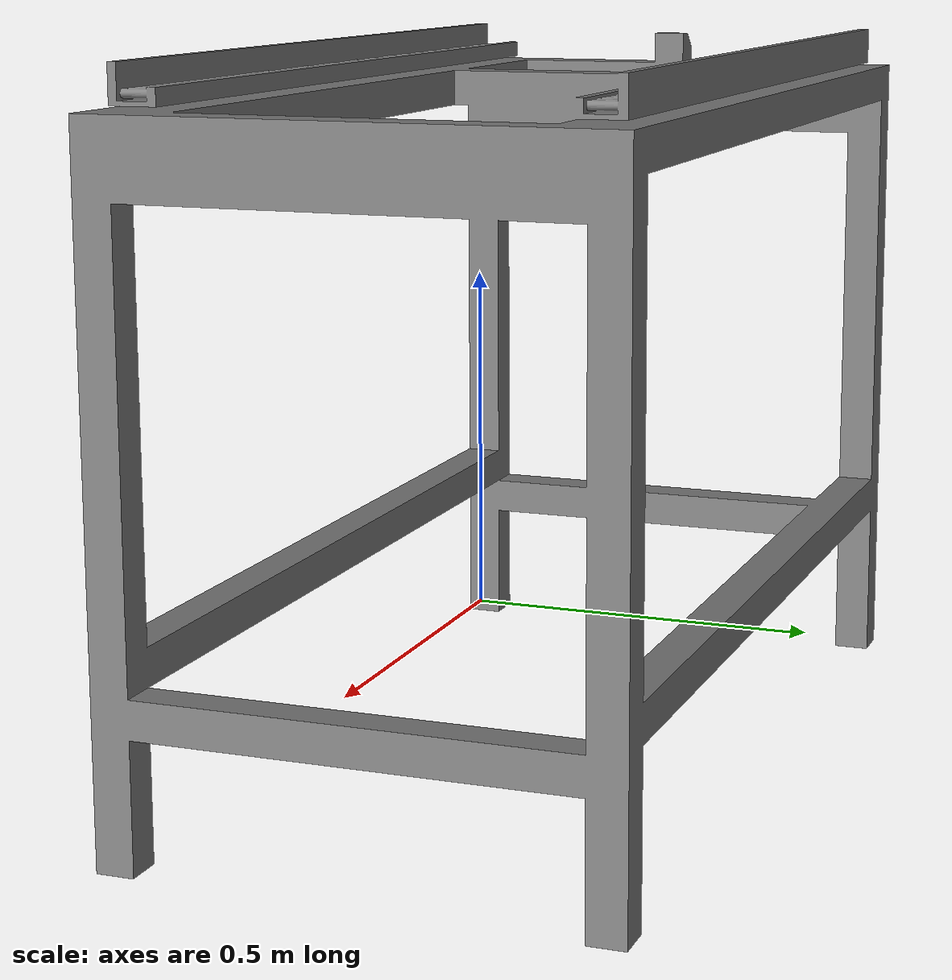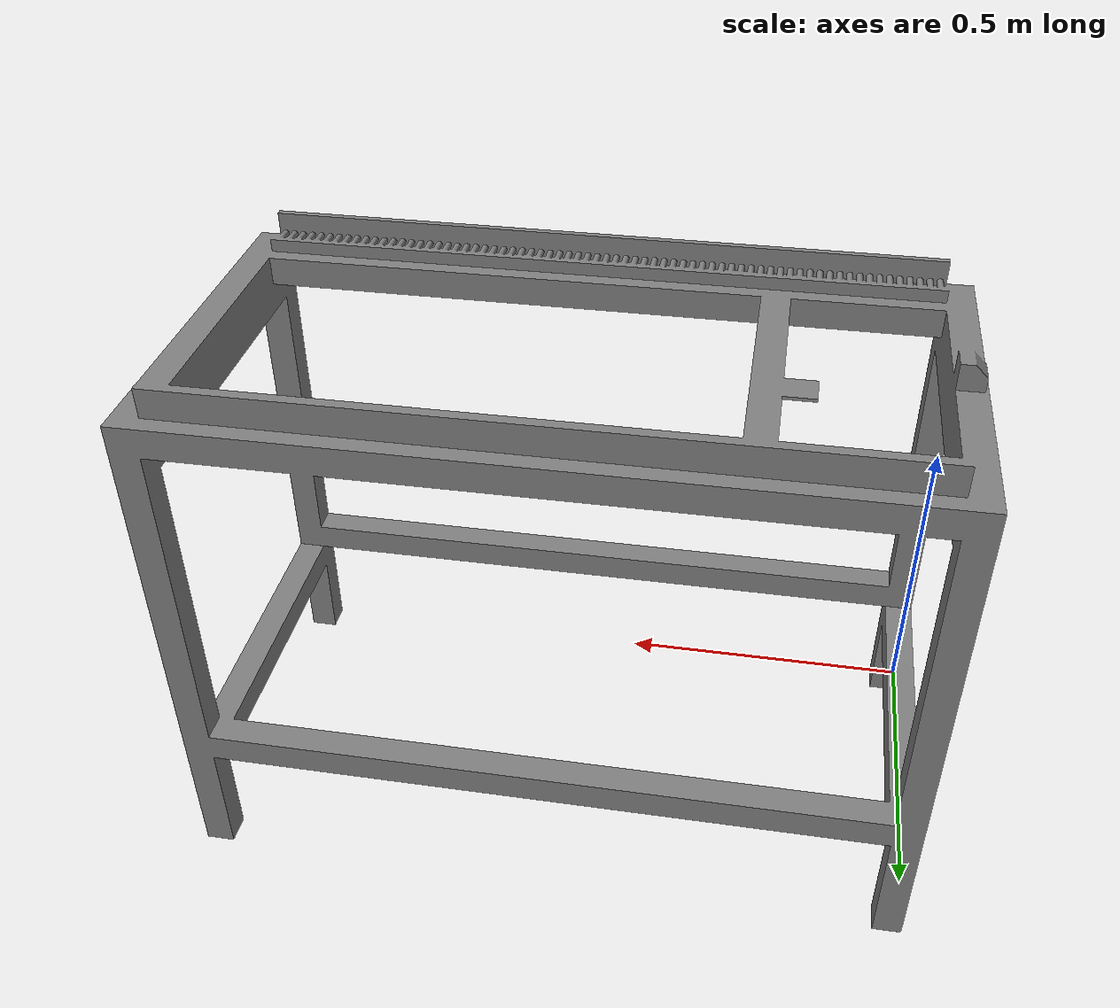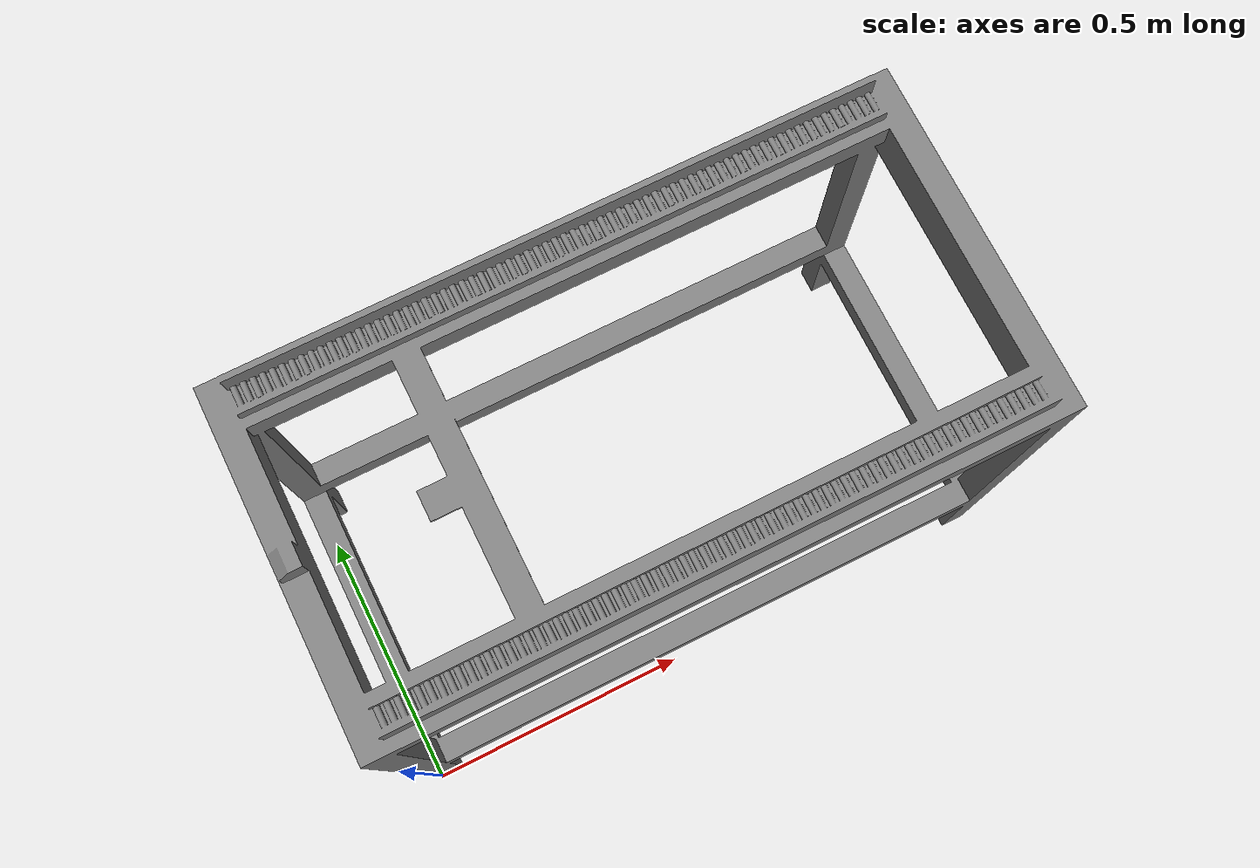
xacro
<?xml version="1.0"?>
<!-- Standalone conveyor fixed to the Gazebo world, for testing the conveyor node. -->
<robot xmlns:xacro="http://wiki.ros.org/xacro" name="conveyor">

  <xacro:arg name="simulated" default="true"/>

  <xacro:include filename="$(find product_carrier)/urdf/conveyor.urdf.xacro"/>

  <!-- A joint to the 'world' link makes Gazebo fix the model to the world -->
  <link name="world"/>

  <xacro:conveyor
    parent="world"
    simulated="$(arg simulated)"
    mount_origin_xyz="0 0 0"
    mount_origin_rpy="0 0 0"
  />

</robot>

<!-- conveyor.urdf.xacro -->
<robot xmlns:xacro="http://wiki.ros.org/xacro" name="conveyor">

  <xacro:property name="conveyor_model_base" value="$(find product_carrier)/model/conveyor"/>

  <xacro:macro name="conveyor" params="
    parent
    simulated:=true
    mount_origin_xyz:='0 0 0'
    mount_origin_rpy:='0 0 0'
    conveyor_length:=0.6
    update_rate_hz:=10.0
    tf_prefix:=''">

    <!-- PLACEHOLDER values, to be replaced with measured ones -->
    <xacro:property name="origin_base_xyz" value="1.051 0.3 0.84"/>
    <xacro:property name="origin_base_rpy" value="0 0 0"/>
    <!-- presence lidar: outside the conveyor body, ray (+X of the sensor) up to +Z path -->
    <xacro:property name="presence_sensor_pose" value="0.1 0.08 0.816 0 ${-pi/2.0} 0"/>
    <xacro:property name="presence_sensor_range" value="0.05"/>
    <xacro:property name="carrier_effort" value="1000.0"/>
    <xacro:property name="carrier_velocity" value="0.5"/>
    <!-- carrier position controller gains, tuned for a light (~2 kg) welded product -->
    <xacro:property name="carrier_p_gain" value="100"/>
    <xacro:property name="carrier_d_gain" value="30"/>
    <xacro:property name="carrier_cmd_limit" value="200"/>

    <link name="${tf_prefix}conveyor_origin">
      <visual>
        <origin xyz="0 0 0" rpy="0 0 0"/>
        <geometry>
          <mesh filename="file://${conveyor_model_base}/meshes/visual.dae"/>
        </geometry>
        <material name="conveyor_grey">
          <color rgba="0.5 0.5 0.5 1"/>
        </material>
      </visual>
      <collision>
        <origin xyz="0 0 0" rpy="0 0 0"/>
        <geometry>
          <mesh filename="file://${conveyor_model_base}/meshes/collision.stl"/>
        </geometry>
      </collision>
      <!-- PLACEHOLDER inertial estimate -->
      <inertial>
        <origin xyz="0 0 0.4" rpy="0 0 0"/>
        <mass value="50.0"/>
        <inertia ixx="1.0" ixy="0" ixz="0" iyy="1.0" iyz="0" izz="1.0"/>
      </inertial>
    </link>

    <joint name="${tf_prefix}${parent}_conveyor_joint" type="fixed">
      <parent link="${tf_prefix}${parent}"/>
      <child link="${tf_prefix}conveyor_origin"/>
      <origin xyz="${mount_origin_xyz}" rpy="${mount_origin_rpy}"/>
    </joint>

    <link name="${tf_prefix}carrier_base"/>

    <joint name="${tf_prefix}origin_base_joint" type="fixed">
      <parent link="${tf_prefix}conveyor_origin"/>
      <child link="${tf_prefix}carrier_base"/>
      <origin xyz="${origin_base_xyz}" rpy="${origin_base_rpy}"/>
    </joint>

    <!-- Tiny inertial so the link is not dropped by sdformat on a non-fixed joint -->
    <link name="${tf_prefix}carrier">
      <inertial>
        <origin xyz="0 0 0" rpy="0 0 0"/>
        <mass value="0.001"/>
        <inertia ixx="1e-6" ixy="0" ixz="0" iyy="1e-6" iyz="0" izz="1e-6"/>
      </inertial>
    </link>

    <xacro:if value="${simulated}">
      <joint name="${tf_prefix}base_carrier_joint" type="prismatic">
        <parent link="${tf_prefix}carrier_base"/>
        <child link="${tf_prefix}carrier"/>
        <origin xyz="0 0 0" rpy="0 0 0"/>
        <axis xyz="1 0 0"/>
        <limit lower="${-conveyor_length}" upper="0.0" effort="${carrier_effort}" velocity="${carrier_velocity}"/>
      </joint>
    </xacro:if>
    <xacro:unless value="${simulated}">
      <joint name="${tf_prefix}base_carrier_joint" type="fixed">
        <parent link="${tf_prefix}carrier_base"/>
        <child link="${tf_prefix}carrier"/>
        <origin xyz="${-conveyor_length} 0 0" rpy="0 0 0"/>
      </joint>
    </xacro:unless>

    <xacro:if value="${simulated}">
      <!-- Single-ray presence sensor at the workplace slot; any return within range means a product is in place -->
      <gazebo reference="${tf_prefix}conveyor_origin">
        <sensor name="${tf_prefix}conveyor_presence_sensor" type="gpu_lidar">
          <pose>${presence_sensor_pose}</pose>
          <always_on>true</always_on>
          <update_rate>${update_rate_hz}</update_rate>
          <visualize>true</visualize>
          <topic>${tf_prefix}conveyor/presence_sensor</topic>
          <frame_id>${tf_prefix}conveyor_origin</frame_id>
          <lidar>
            <scan>
              <horizontal>
                <samples>1</samples>
                <resolution>1</resolution>
                <min_angle>0</min_angle>
                <max_angle>0</max_angle>
              </horizontal>
              <vertical>
                <samples>1</samples>
                <resolution>1</resolution>
                <min_angle>0</min_angle>
                <max_angle>0</max_angle>
              </vertical>
            </scan>
            <range>
              <min>0.001</min>
              <max>${presence_sensor_range}</max>
              <resolution>0.001</resolution>
            </range>
          </lidar>
        </sensor>
      </gazebo>

      <gazebo>
        <plugin filename="gz-sim-joint-state-publisher-system" name="gz::sim::systems::JointStatePublisher">
          <joint_name>${tf_prefix}base_carrier_joint</joint_name>
          <topic>${tf_prefix}conveyor/joint_state</topic>
        </plugin>
        <!-- Drives the carrier joint; keeps the default cmd_pos topic so the GUI plugin can command it -->
        <plugin filename="gz-sim-joint-position-controller-system" name="gz::sim::systems::JointPositionController">
          <joint_name>${tf_prefix}base_carrier_joint</joint_name>
          <p_gain>${carrier_p_gain}</p_gain>
          <i_gain>0</i_gain>
          <d_gain>${carrier_d_gain}</d_gain>
          <cmd_max>${carrier_cmd_limit}</cmd_max>
          <cmd_min>${-carrier_cmd_limit}</cmd_min>
        </plugin>
      </gazebo>
    </xacro:if>

  </xacro:macro>

</robot>
